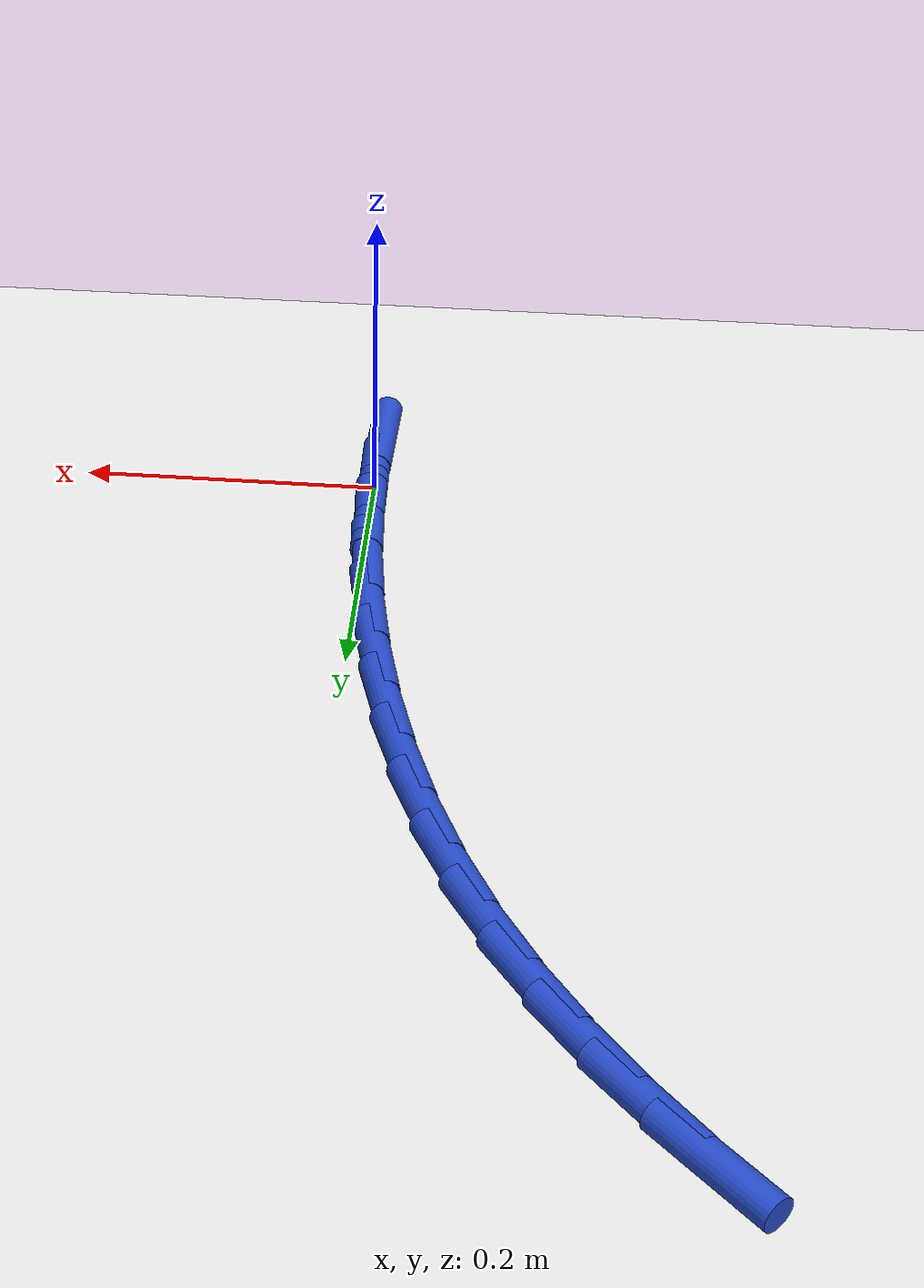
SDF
<sdf version="1.6">
 <world name="default">
  <model name="ground_plane">
   <static>1</static>
   <link name="link">
    <collision name="collision">
     <geometry><plane><normal>0 0 1</normal><size>100 100</size></plane></geometry>
     <surface><friction><ode><mu>100</mu><mu2>50</mu2></ode></friction></surface>
    </collision>
    <visual name="visual">
     <cast_shadows>0</cast_shadows>
     <geometry><plane><normal>0 0 1</normal><size>100 100</size></plane></geometry>
     <material>
      <script><uri>file://media/materials/scripts/gazebo.material</uri><name>Gazebo/WhiteGlow</name></script>
     </material>
    </visual>
   </link>
  </model>
  <model name="line">
   <link name="link_0">
    <pose>2.949029909160572e-17 -4.163336342344337e-17 0.01 0 1.57 -1.5482628776437326</pose>
    <collision name="collision">
     <geometry><cylinder><radius>0.01</radius><length>0.08</length></cylinder></geometry>
    </collision>
    <visual name="visual">
     <material>
      <script><name>Gazebo/Blue</name><uri>file://media/materials/scripts/gazebo.material</uri></script>
     </material>
     <geometry><cylinder><radius>0.01</radius><length>0.08</length></cylinder></geometry>
    </visual>
   </link>
   <link name="link_1">
    <pose>-0.0011610782208647354 0.05151815381150185 0.01 0 1.57 -1.5023433477779056</pose>
    <collision name="collision">
     <geometry><cylinder><radius>0.01</radius><length>0.08</length></cylinder></geometry>
    </collision>
    <visual name="visual">
     <material>
      <script><name>Gazebo/Blue</name><uri>file://media/materials/scripts/gazebo.material</uri></script>
     </material>
     <geometry><cylinder><radius>0.01</radius><length>0.08</length></cylinder></geometry>
    </visual>
   </link>
   <link name="link_2">
    <pose>-0.004686851859591169 0.10294418278295633 0.01 0 1.57 -1.4547697596404423</pose>
    <collision name="collision">
     <geometry><cylinder><radius>0.01</radius><length>0.08</length></cylinder></geometry>
    </collision>
    <visual name="visual">
     <material>
      <script><name>Gazebo/Blue</name><uri>file://media/materials/scripts/gazebo.material</uri></script>
     </material>
     <geometry><cylinder><radius>0.01</radius><length>0.08</length></cylinder></geometry>
    </visual>
   </link>
   <link name="link_3">
    <pose>-0.010637041667062553 0.1539968438044139 0.01 0 1.57 -1.4049787457923235</pose>
    <collision name="collision">
     <geometry><cylinder><radius>0.01</radius><length>0.08</length></cylinder></geometry>
    </collision>
    <visual name="visual">
     <material>
      <script><name>Gazebo/Blue</name><uri>file://media/materials/scripts/gazebo.material</uri></script>
     </material>
     <geometry><cylinder><radius>0.01</radius><length>0.08</length></cylinder></geometry>
    </visual>
   </link>
   <link name="link_4">
    <pose>-0.019071368394162173 0.20439489376592485 0.01 0 1.57 -1.3523858434189278</pose>
    <collision name="collision">
     <geometry><cylinder><radius>0.01</radius><length>0.08</length></cylinder></geometry>
    </collision>
    <visual name="visual">
     <material>
      <script><name>Gazebo/Blue</name><uri>file://media/materials/scripts/gazebo.material</uri></script>
     </material>
     <geometry><cylinder><radius>0.01</radius><length>0.08</length></cylinder></geometry>
    </visual>
   </link>
   <link name="link_5">
    <pose>-0.030049552791773296 0.2538570895575396 0.01 0 1.57 -1.2963824746404804</pose>
    <collision name="collision">
     <geometry><cylinder><radius>0.01</radius><length>0.08</length></cylinder></geometry>
    </collision>
    <visual name="visual">
     <material>
      <script><name>Gazebo/Blue</name><uri>file://media/materials/scripts/gazebo.material</uri></script>
     </material>
     <geometry><cylinder><radius>0.01</radius><length>0.08</length></cylinder></geometry>
    </visual>
   </link>
   <link name="link_6">
    <pose>-0.04363131561077922 0.3021021880693086 0.01 0 1.57 -1.2363396563524172</pose>
    <collision name="collision">
     <geometry><cylinder><radius>0.01</radius><length>0.08</length></cylinder></geometry>
    </collision>
    <visual name="visual">
     <material>
      <script><name>Gazebo/Blue</name><uri>file://media/materials/scripts/gazebo.material</uri></script>
     </material>
     <geometry><cylinder><radius>0.01</radius><length>0.08</length></cylinder></geometry>
    </visual>
   </link>
   <link name="link_7">
    <pose>-0.05987637760206321 0.3488489461912823 0.01 0 1.57 -1.1716217137240348</pose>
    <collision name="collision">
     <geometry><cylinder><radius>0.01</radius><length>0.08</length></cylinder></geometry>
    </collision>
    <visual name="visual">
     <material>
      <script><name>Gazebo/Blue</name><uri>file://media/materials/scripts/gazebo.material</uri></script>
     </material>
     <geometry><cylinder><radius>0.01</radius><length>0.08</length></cylinder></geometry>
    </visual>
   </link>
   <link name="link_8">
    <pose>-0.07884445951650856 0.39381612081351103 0.01 0 1.57 -1.1016149077701611</pose>
    <collision name="collision">
     <geometry><cylinder><radius>0.01</radius><length>0.08</length></cylinder></geometry>
    </collision>
    <visual name="visual">
     <material>
      <script><name>Gazebo/Blue</name><uri>file://media/materials/scripts/gazebo.material</uri></script>
     </material>
     <geometry><cylinder><radius>0.01</radius><length>0.08</length></cylinder></geometry>
    </visual>
   </link>
   <link name="link_9">
    <pose>-0.10059526870024321 0.43672249679207065 0.01 0 1.57 -1.0279057046944653</pose>
    <collision name="collision">
     <geometry><cylinder><radius>0.01</radius><length>0.08</length></cylinder></geometry>
    </collision>
    <visual name="visual">
     <material>
      <script><name>Gazebo/Blue</name><uri>file://media/materials/scripts/gazebo.material</uri></script>
     </material>
     <geometry><cylinder><radius>0.01</radius><length>0.08</length></cylinder></geometry>
    </visual>
   </link>
   <link name="link_10">
    <pose>-0.12513622866354515 0.4773959375191431 0.01 0 1.57 -0.9578073523704165</pose>
    <collision name="collision">
     <geometry><cylinder><radius>0.01</radius><length>0.08</length></cylinder></geometry>
    </collision>
    <visual name="visual">
     <material>
      <script><name>Gazebo/Blue</name><uri>file://media/materials/scripts/gazebo.material</uri></script>
     </material>
     <geometry><cylinder><radius>0.01</radius><length>0.08</length></cylinder></geometry>
    </visual>
   </link>
   <link name="link_11">
    <pose>-0.15230396457458753 0.516020638947885 0.01 0 1.57 -0.8939057636603568</pose>
    <collision name="collision">
     <geometry><cylinder><radius>0.01</radius><length>0.08</length></cylinder></geometry>
    </collision>
    <visual name="visual">
     <material>
      <script><name>Gazebo/Blue</name><uri>file://media/materials/scripts/gazebo.material</uri></script>
     </material>
     <geometry><cylinder><radius>0.01</radius><length>0.08</length></cylinder></geometry>
    </visual>
   </link>
   <link name="link_12">
    <pose>-0.1819002809311496 0.5528534425765077 0.01 0 1.57 -0.8370627536945683</pose>
    <collision name="collision">
     <geometry><cylinder><radius>0.01</radius><length>0.08</length></cylinder></geometry>
    </collision>
    <visual name="visual">
     <material>
      <script><name>Gazebo/Blue</name><uri>file://media/materials/scripts/gazebo.material</uri></script>
     </material>
     <geometry><cylinder><radius>0.01</radius><length>0.08</length></cylinder></geometry>
    </visual>
   </link>
   <link name="link_13">
    <pose>-0.21372698223101025 0.5881511899032216 0.01 0 1.57 -0.7877647693739106</pose>
    <collision name="collision">
     <geometry><cylinder><radius>0.01</radius><length>0.08</length></cylinder></geometry>
    </collision>
    <visual name="visual">
     <material>
      <script><name>Gazebo/Blue</name><uri>file://media/materials/scripts/gazebo.material</uri></script>
     </material>
     <geometry><cylinder><radius>0.01</radius><length>0.08</length></cylinder></geometry>
    </visual>
   </link>
   <link name="link_139">
    <pose>-0.0011637692065623638 -0.05135020821316451 0.01 0 1.57 1.5481368272524287</pose>
    <collision name="collision">
     <geometry><cylinder><radius>0.01</radius><length>0.08</length></cylinder></geometry>
    </collision>
    <visual name="visual">
     <material>
      <script><name>Gazebo/Blue</name><uri>file://media/materials/scripts/gazebo.material</uri></script>
     </material>
     <geometry><cylinder><radius>0.01</radius><length>0.08</length></cylinder></geometry>
    </visual>
   </link>
   <link name="link_140">
    <pose>2.949029909160572e-17 -6.938893903907228e-17 0.01 0 1.57 -1.5486575235328084</pose>
    <collision name="collision">
     <geometry><cylinder><radius>0.01</radius><length>0.08</length></cylinder></geometry>
    </collision>
    <visual name="visual">
     <material>
      <script><name>Gazebo/Blue</name><uri>file://media/materials/scripts/gazebo.material</uri></script>
     </material>
     <geometry><cylinder><radius>0.01</radius><length>0.08</length></cylinder></geometry>
    </visual>
   </link>
   <link name="link_141">
    <pose>-0.0011412054604159946 0.0515393264830658 0.01 0 1.57 -1.5486575235328084</pose>
    <collision name="collision">
     <geometry><cylinder><radius>0.01</radius><length>0.08</length></cylinder></geometry>
    </collision>
    <visual name="visual">
     <material>
      <script><name>Gazebo/Blue</name><uri>file://media/materials/scripts/gazebo.material</uri></script>
     </material>
     <geometry><cylinder><radius>0.01</radius><length>0.08</length></cylinder></geometry>
    </visual>
   </link>
  </model>
 </world>
</sdf>
